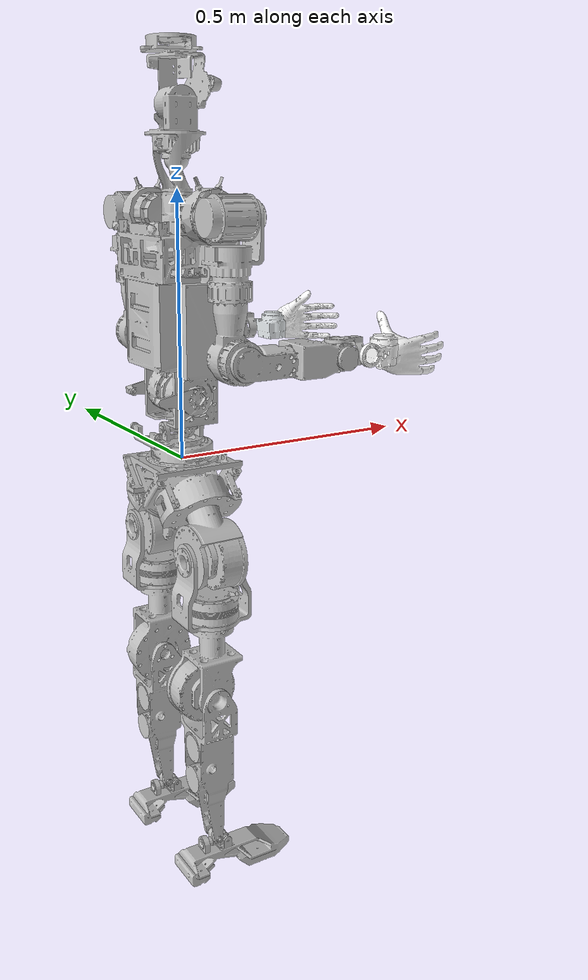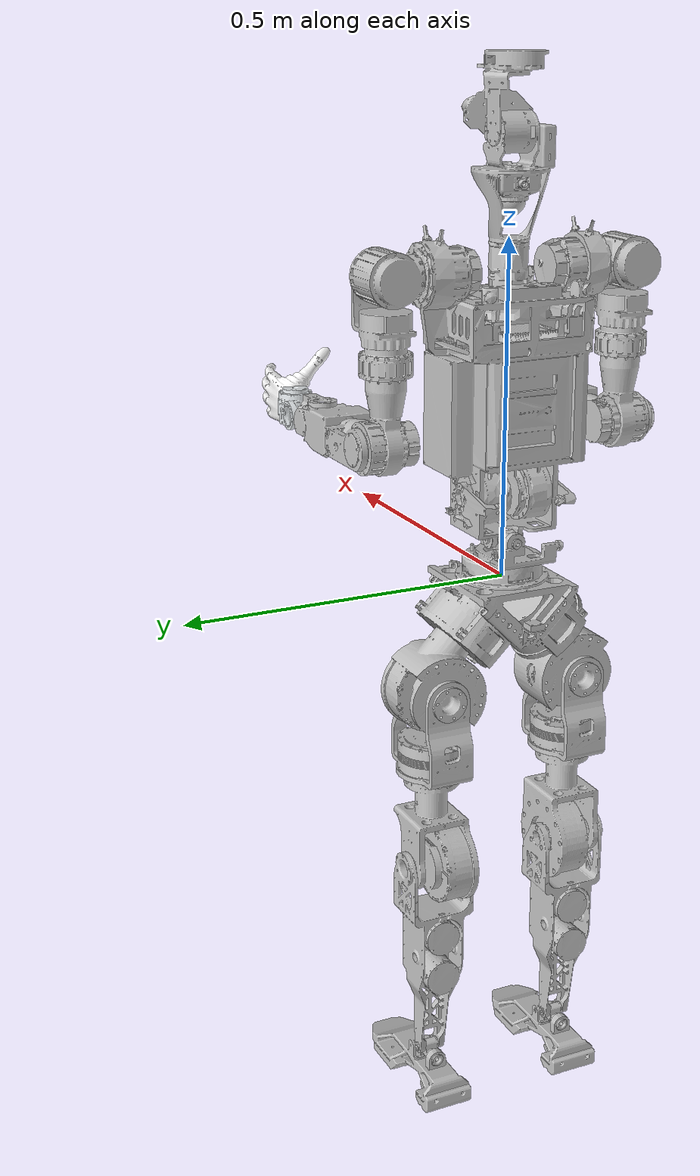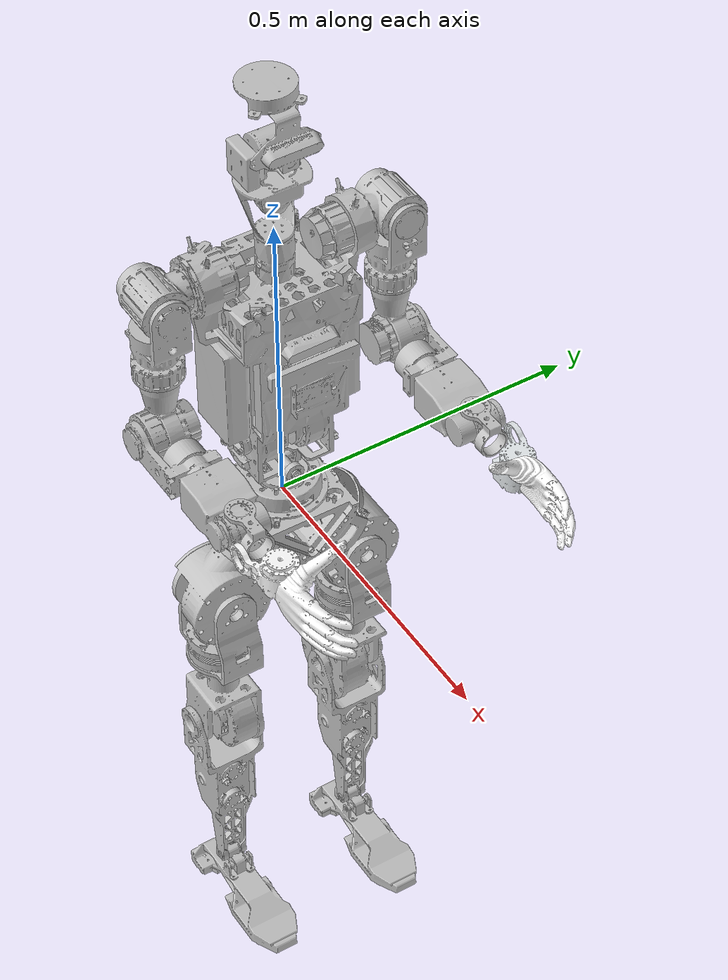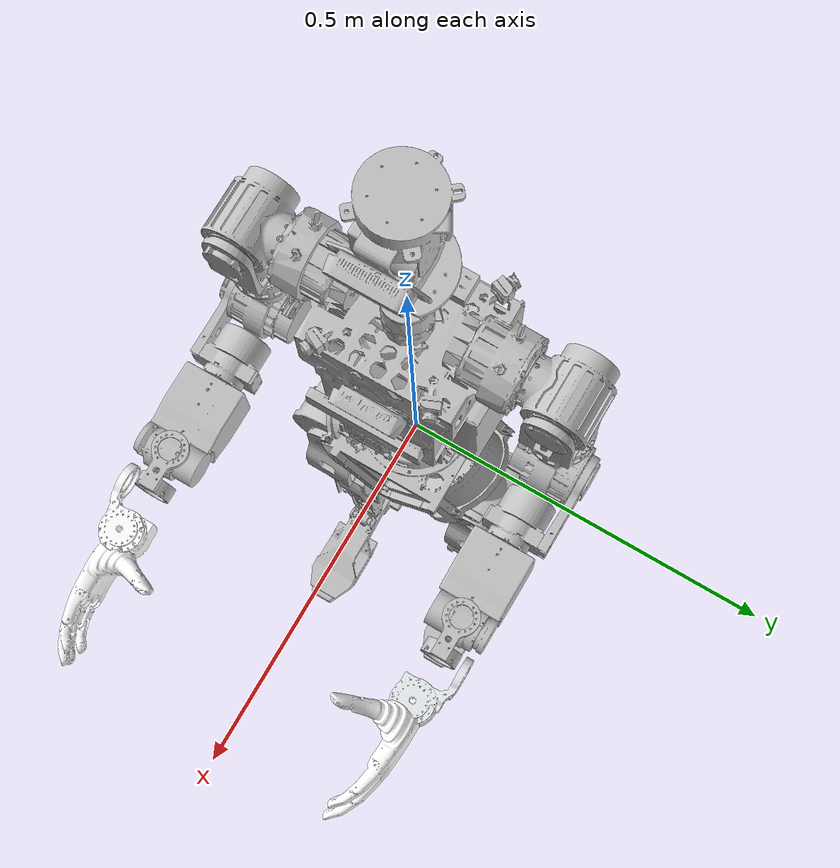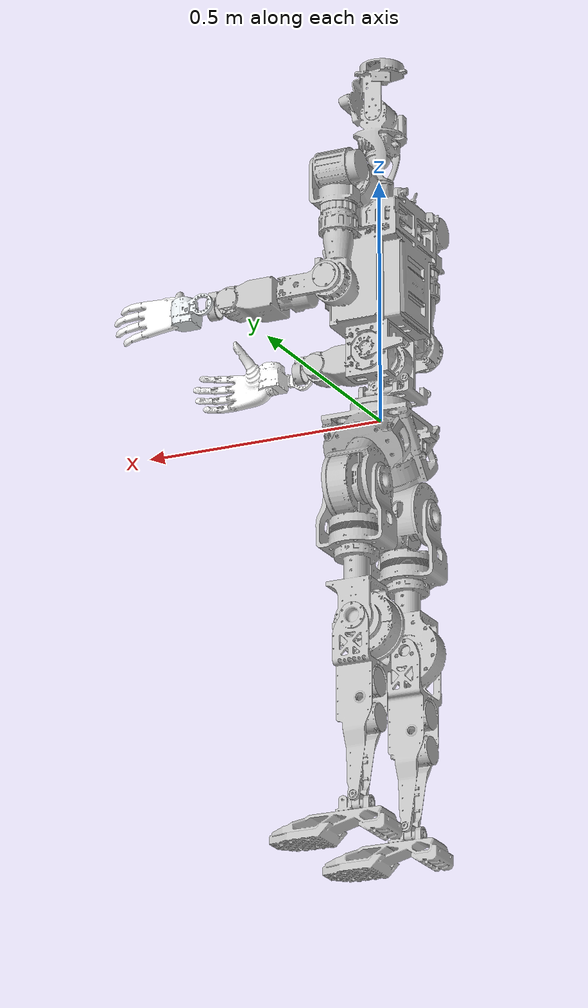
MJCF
<?xml version='1.0' encoding='UTF-8'?>
<mujoco model="v11_v4">
  <compiler angle="radian" meshdir="../meshes/" autolimits="true" discardvisual="false" />
  <default>
    <joint damping="0.5" armature="0.01" frictionloss="0.1" />
    <geom group="3" contype="1" conaffinity="1" />
  </default>
  <asset>
    <material name="silver" rgba="0.75294 0.75294 0.75294 1" />
    <material name="white" rgba="1 1 1 1" />
    <mesh name="base_link" file="/home/user2/Instinct-mjlab/InstinctMJ/src/instinct_mj/assets/resources/v11/urdf/../meshes/base_link.STL"/>
    <mesh name="left_hip_pitch_link" file="/home/user2/Instinct-mjlab/InstinctMJ/src/instinct_mj/assets/resources/v11/urdf/../meshes/left_hip_pitch_link.STL"/>
    <mesh name="left_hip_roll_link" file="/home/user2/Instinct-mjlab/InstinctMJ/src/instinct_mj/assets/resources/v11/urdf/../meshes/left_hip_roll_link.STL"/>
    <mesh name="left_hip_yaw_link" file="/home/user2/Instinct-mjlab/InstinctMJ/src/instinct_mj/assets/resources/v11/urdf/../meshes/left_hip_yaw_link.STL"/>
    <mesh name="left_knee_link" file="/home/user2/Instinct-mjlab/InstinctMJ/src/instinct_mj/assets/resources/v11/urdf/../meshes/left_knee_link.STL"/>
    <mesh name="left_ankle_pitch_link" file="/home/user2/Instinct-mjlab/InstinctMJ/src/instinct_mj/assets/resources/v11/urdf/../meshes/left_ankle_pitch_link.STL"/>
    <mesh name="left_ankle_roll_link" file="/home/user2/Instinct-mjlab/InstinctMJ/src/instinct_mj/assets/resources/v11/urdf/../meshes/left_ankle_roll_link.STL"/>
    <mesh name="right_hip_pitch_link" file="/home/user2/Instinct-mjlab/InstinctMJ/src/instinct_mj/assets/resources/v11/urdf/../meshes/right_hip_pitch_link.STL"/>
    <mesh name="right_hip_roll_link" file="/home/user2/Instinct-mjlab/InstinctMJ/src/instinct_mj/assets/resources/v11/urdf/../meshes/right_hip_roll_link.STL"/>
    <mesh name="right_hip_yaw_link" file="/home/user2/Instinct-mjlab/InstinctMJ/src/instinct_mj/assets/resources/v11/urdf/../meshes/right_hip_yaw_link.STL"/>
    <mesh name="right_knee_link" file="/home/user2/Instinct-mjlab/InstinctMJ/src/instinct_mj/assets/resources/v11/urdf/../meshes/right_knee_link.STL"/>
    <mesh name="right_ankle_pitch_link" file="/home/user2/Instinct-mjlab/InstinctMJ/src/instinct_mj/assets/resources/v11/urdf/../meshes/right_ankle_pitch_link.STL"/>
    <mesh name="right_ankle_roll_link" file="/home/user2/Instinct-mjlab/InstinctMJ/src/instinct_mj/assets/resources/v11/urdf/../meshes/right_ankle_roll_link.STL"/>
    <mesh name="waist_yaw_link" file="/home/user2/Instinct-mjlab/InstinctMJ/src/instinct_mj/assets/resources/v11/urdf/../meshes/waist_yaw_link.STL"/>
    <mesh name="waist_roll_link" file="/home/user2/Instinct-mjlab/InstinctMJ/src/instinct_mj/assets/resources/v11/urdf/../meshes/waist_roll_link.STL"/>
    <mesh name="waist_pitch_link" file="/home/user2/Instinct-mjlab/InstinctMJ/src/instinct_mj/assets/resources/v11/urdf/../meshes/waist_pitch_link.STL"/>
    <mesh name="head_yaw_link" file="/home/user2/Instinct-mjlab/InstinctMJ/src/instinct_mj/assets/resources/v11/urdf/../meshes/head_yaw_link.STL"/>
    <mesh name="head_pitch_link" file="/home/user2/Instinct-mjlab/InstinctMJ/src/instinct_mj/assets/resources/v11/urdf/../meshes/head_pitch_link.STL"/>
    <mesh name="left_shoulder_pitch_link" file="/home/user2/Instinct-mjlab/InstinctMJ/src/instinct_mj/assets/resources/v11/urdf/../meshes/left_shoulder_pitch_link.STL"/>
    <mesh name="left_shoulder_roll_link" file="/home/user2/Instinct-mjlab/InstinctMJ/src/instinct_mj/assets/resources/v11/urdf/../meshes/left_shoulder_roll_link.STL"/>
    <mesh name="left_shoulder_yaw_link" file="/home/user2/Instinct-mjlab/InstinctMJ/src/instinct_mj/assets/resources/v11/urdf/../meshes/left_shoulder_yaw_link.STL"/>
    <mesh name="left_elbow_link" file="/home/user2/Instinct-mjlab/InstinctMJ/src/instinct_mj/assets/resources/v11/urdf/../meshes/left_elbow_link.STL"/>
    <mesh name="left_wrist_roll_link" file="/home/user2/Instinct-mjlab/InstinctMJ/src/instinct_mj/assets/resources/v11/urdf/../meshes/left_wrist_roll_link.STL"/>
    <mesh name="left_wrist_yaw_link" file="/home/user2/Instinct-mjlab/InstinctMJ/src/instinct_mj/assets/resources/v11/urdf/../meshes/left_wrist_yaw_link.STL"/>
    <mesh name="left_wrist_pitch_link" file="/home/user2/Instinct-mjlab/InstinctMJ/src/instinct_mj/assets/resources/v11/urdf/../meshes/left_wrist_pitch_link.STL"/>
    <mesh name="left_hand_link" file="/home/user2/Instinct-mjlab/InstinctMJ/src/instinct_mj/assets/resources/v11/urdf/../meshes/left_hand_link.STL"/>
    <mesh name="right_shoulder_pitch_link" file="/home/user2/Instinct-mjlab/InstinctMJ/src/instinct_mj/assets/resources/v11/urdf/../meshes/right_shoulder_pitch_link.STL"/>
    <mesh name="right_shoulder_roll_link" file="/home/user2/Instinct-mjlab/InstinctMJ/src/instinct_mj/assets/resources/v11/urdf/../meshes/right_shoulder_roll_link.STL"/>
    <mesh name="right_shoulder_yaw_link" file="/home/user2/Instinct-mjlab/InstinctMJ/src/instinct_mj/assets/resources/v11/urdf/../meshes/right_shoulder_yaw_link.STL"/>
    <mesh name="right_elbow_link" file="/home/user2/Instinct-mjlab/InstinctMJ/src/instinct_mj/assets/resources/v11/urdf/../meshes/right_elbow_link.STL"/>
    <mesh name="right_wrist_roll_link" file="/home/user2/Instinct-mjlab/InstinctMJ/src/instinct_mj/assets/resources/v11/urdf/../meshes/right_wrist_roll_link.STL"/>
    <mesh name="right_wrist_yaw_link" file="/home/user2/Instinct-mjlab/InstinctMJ/src/instinct_mj/assets/resources/v11/urdf/../meshes/right_wrist_yaw_link.STL"/>
    <mesh name="right_wrist_pitch_link" file="/home/user2/Instinct-mjlab/InstinctMJ/src/instinct_mj/assets/resources/v11/urdf/../meshes/right_wrist_pitch_link.STL"/>
    <mesh name="right_hand_link" file="/home/user2/Instinct-mjlab/InstinctMJ/src/instinct_mj/assets/resources/v11/urdf/../meshes/right_hand_link.STL"/>
  </asset>
  <worldbody>
    <body name="base_link">
      <inertial pos="-0.000155 2.8e-05 -0.049334" quat="0.505449 0.504747 -0.495115 0.494584" mass="5.77559" diaginertia="0.0309649 0.0287201 0.019774"/>
      <joint name="floating_base_joint" type="free" limited="false" actuatorfrclimited="false"/>
      <geom type="mesh" contype="0" conaffinity="0" group="2" density="0" rgba="0.75294 0.75294 0.75294 1" mesh="base_link"/>
      <geom size="0.07" pos="0 0 -0.05" rgba="0.75294 0.75294 0.75294 1"/>
      <site name="imu" size="0.01" pos="0.0 0 0.0"/>
      <body name="left_hip_pitch_link" pos="0 0.11619 -0.12455" quat="0.923879 -0.382684 0 0">
        <inertial pos="0.003585 0.02108 -0.028245" quat="0.707999 0.009721 0.0123654 0.706039" mass="2.31832" diaginertia="0.0280807 0.0280807 0.0280807"/>
        <joint name="left_hip_pitch_joint" pos="0 0 0" axis="0 1 0" range="-2.618 2.618" actuatorfrcrange="-150 150"/>
        <geom type="mesh" contype="0" conaffinity="0" group="2" density="0" rgba="0.75294 0.75294 0.75294 1" mesh="left_hip_pitch_link"/>
        <body name="left_hip_roll_link" pos="-0.001 0.03 -0.03" quat="0.923879 0.382684 0 0">
          <inertial pos="0.001722 1.6e-05 -0.084185" quat="0.999999 0 -0.00155171 0" mass="1.4811" diaginertia="0.026999 0.026999 0.026999"/>
          <joint name="left_hip_roll_joint" pos="0 0 0" axis="1 0 0" range="-0.7854 2.3563" actuatorfrcrange="-150 150"/>
          <geom type="mesh" contype="0" conaffinity="0" group="2" density="0" rgba="0.752941 0.752941 0.752941 1" mesh="left_hip_roll_link"/>
          <body name="left_hip_yaw_link" pos="0 0 -0.13">
            <inertial pos="-0.010508 -0.008686 -0.118129" quat="0.0317018 0.713347 -0.0182505 0.699856" mass="2.40368" diaginertia="0.0237487 0.0237487 0.0237487"/>
            <joint name="left_hip_yaw_joint" pos="0 0 0" axis="0 0 1" range="-2.0944 2.0944" actuatorfrcrange="-90 90"/>
            <geom type="mesh" contype="0" conaffinity="0" group="2" density="0" rgba="0.752941 0.752941 0.752941 1" mesh="left_hip_yaw_link"/>
            <geom size="0.05 0.1" pos="0 0 0.05" type="capsule" rgba="0.752941 0.752941 0.752941 1"/>
            <body name="left_knee_link" pos="-0.015 0 -0.151">
              <inertial pos="0.004171 0.000668 -0.136788" quat="0.70704 0.00798493 0.00707864 0.707093" mass="1.79438" diaginertia="0.0307603 0.0307603 0.0307603"/>
              <joint name="left_knee_joint" pos="0 0 0" axis="0 1 0" range="-0.0873 2.0944" actuatorfrcrange="-150 150"/>
              <geom type="mesh" contype="0" conaffinity="0" group="2" density="0" rgba="0.752941 0.752941 0.752941 1" mesh="left_knee_link"/>
              <geom size="0.04 0.15" pos="0 0 -0.15" type="capsule" rgba="0.752941 0.752941 0.752941 1"/>
              <body name="left_ankle_pitch_link" pos="0.015 0.0005 -0.339">
                <inertial pos="-0.004439 8e-06 -0.007488" quat="0 0.83147 0 0.55557" mass="0.089167" diaginertia="2.22426e-05 1.9e-05 1.37574e-05"/>
                <joint name="left_ankle_pitch_joint" pos="0 0 0" axis="0 1 0" range="-0.9599 0.2618" actuatorfrcrange="-54 54"/>
                <geom type="mesh" contype="0" conaffinity="0" group="2" density="0" rgba="0.752941 0.752941 0.752941 1" mesh="left_ankle_pitch_link"/>
                <body name="left_ankle_roll_link" pos="0 0 -0.015">
                  <inertial pos="0.044476 0 -0.035687" quat="0 0.6789 0 0.73423" mass="0.878239" diaginertia="0.00453339 0.00445 0.000543609"/>
                  <joint name="left_ankle_roll_joint" pos="0 0 0" axis="1 0 0" range="-0.1745 0.1745" actuatorfrcrange="-54 54"/>
                  <geom type="mesh" contype="0" conaffinity="0" group="2" density="0" rgba="0.752941 0.752941 0.752941 1" mesh="left_ankle_roll_link"/>
                  <geom size="0.012 0.08" pos="0.04 -0.03 -0.055" quat="0.710914 0 0.703279 0" type="capsule" rgba="0.2 0.2 0.2 1"/>
                  <geom size="0.012 0.1" pos="0.05 -0.02 -0.055" quat="0.710914 0 0.703279 0" type="capsule" rgba="0.2 0.2 0.2 1"/>
                  <geom size="0.012 0.11" pos="0.054 -0.01 -0.055" quat="0.710914 0 0.703279 0" type="capsule" rgba="0.2 0.2 0.2 1"/>
                  <geom size="0.012 0.11" pos="0.054 0 -0.055" quat="0.710914 0 0.703279 0" type="capsule" rgba="0.2 0.2 0.2 1"/>
                  <geom size="0.012 0.11" pos="0.054 0.01 -0.055" quat="0.710914 0 0.703279 0" type="capsule" rgba="0.2 0.2 0.2 1"/>
                  <geom size="0.012 0.1" pos="0.05 0.02 -0.055" quat="0.710914 0 0.703279 0" type="capsule" rgba="0.2 0.2 0.2 1"/>
                  <geom size="0.012 0.08" pos="0.04 0.03 -0.055" quat="0.710914 0 0.703279 0" type="capsule" rgba="0.2 0.2 0.2 1"/>
                </body>
              </body>
            </body>
          </body>
        </body>
      </body>
      <body name="right_hip_pitch_link" pos="0 -0.11619 -0.12455" quat="0.923879 0.382684 0 0">
        <inertial pos="0.003585 -0.02108 -0.028245" quat="0.706014 0.0165728 0.013907 0.707868" mass="2.31832" diaginertia="0.0280807 0.0280807 0.0280807"/>
        <joint name="right_hip_pitch_joint" pos="0 0 0" axis="0 1 0" range="-2.618 2.618" actuatorfrcrange="-150 150"/>
        <geom type="mesh" contype="0" conaffinity="0" group="2" density="0" rgba="0.752941 0.752941 0.752941 1" mesh="right_hip_pitch_link"/>
        <body name="right_hip_roll_link" pos="-0.001 -0.03 -0.03" quat="0.923879 -0.382684 0 0">
          <inertial pos="0.001722 -1.6e-05 -0.084185" quat="0.999999 0.000357321 -0.00155168 8.80701e-05" mass="1.4811" diaginertia="0.026999 0.026999 0.026999"/>
          <joint name="right_hip_roll_joint" pos="0 0 0" axis="1 0 0" range="-2.3563 0.7854" actuatorfrcrange="-150 150"/>
          <geom type="mesh" contype="0" conaffinity="0" group="2" density="0" rgba="0.752941 0.752941 0.752941 1" mesh="right_hip_roll_link"/>
          <body name="right_hip_yaw_link" pos="0 0 -0.13">
            <inertial pos="-0.010508 0.008686 -0.118129" quat="-0.032124 0.713319 0.018665 0.699854" mass="2.40368" diaginertia="0.0237487 0.0237487 0.0237487"/>
            <joint name="right_hip_yaw_joint" pos="0 0 0" axis="0 0 1" range="-2.0944 2.0944" actuatorfrcrange="-150 150"/>
            <geom type="mesh" contype="0" conaffinity="0" group="2" density="0" rgba="0.752941 0.752941 0.752941 1" mesh="right_hip_yaw_link"/>
            <geom size="0.05 0.1" pos="0 0 0.05" type="capsule" rgba="0.752941 0.752941 0.752941 1"/>
            <body name="right_knee_link" pos="-0.015 0 -0.151">
              <inertial pos="0.004171 -0.000668 -0.136788" quat="0.707093 0.0070741 0.00798947 0.70704" mass="1.79438" diaginertia="0.0307603 0.0307603 0.0307603"/>
              <joint name="right_knee_joint" pos="0 0 0" axis="0 1 0" range="-0.0873 2.0944" actuatorfrcrange="-150 150"/>
              <geom type="mesh" contype="0" conaffinity="0" group="2" density="0" rgba="0.752941 0.752941 0.752941 1" mesh="right_knee_link"/>
              <geom size="0.04 0.15" pos="0 0 -0.15" type="capsule" rgba="0.752941 0.752941 0.752941 1"/>
              <body name="right_ankle_pitch_link" pos="0.015 -0.0005 -0.339">
                <inertial pos="-0.004439 -8e-06 -0.007488" quat="0 0.83147 0 0.55557" mass="0.089167" diaginertia="2.22426e-05 1.9e-05 1.37574e-05"/>
                <joint name="right_ankle_pitch_joint" pos="0 0 0" axis="0 1 0" range="-0.9599 0.2618" actuatorfrcrange="-54 54"/>
                <geom type="mesh" contype="0" conaffinity="0" group="2" density="0" rgba="0.752941 0.752941 0.752941 1" mesh="right_ankle_pitch_link"/>
                <body name="right_ankle_roll_link" pos="0 0 -0.015">
                  <inertial pos="0.044476 0 -0.035687" quat="0 0.679628 0 0.733557" mass="0.878239" diaginertia="0.00453216 0.00445 0.00054484"/>
                  <joint name="right_ankle_roll_joint" pos="0 0 0" axis="1 0 0" range="-0.1745 0.1745" actuatorfrcrange="-54 54"/>
                  <geom type="mesh" contype="0" conaffinity="0" group="2" density="0" rgba="0.752941 0.752941 0.752941 1" mesh="right_ankle_roll_link"/>
                  <geom size="0.012 0.08" pos="0.04 -0.03 -0.055" quat="0.710914 0 0.703279 0" type="capsule" rgba="0.2 0.2 0.2 1"/>
                  <geom size="0.012 0.1" pos="0.05 -0.02 -0.055" quat="0.710914 0 0.703279 0" type="capsule" rgba="0.2 0.2 0.2 1"/>
                  <geom size="0.012 0.11" pos="0.054 -0.01 -0.055" quat="0.710914 0 0.703279 0" type="capsule" rgba="0.2 0.2 0.2 1"/>
                  <geom size="0.012 0.11" pos="0.054 0 -0.055" quat="0.710914 0 0.703279 0" type="capsule" rgba="0.2 0.2 0.2 1"/>
                  <geom size="0.012 0.11" pos="0.054 0.01 -0.055" quat="0.710914 0 0.703279 0" type="capsule" rgba="0.2 0.2 0.2 1"/>
                  <geom size="0.012 0.1" pos="0.05 0.02 -0.055" quat="0.710914 0 0.703279 0" type="capsule" rgba="0.2 0.2 0.2 1"/>
                  <geom size="0.012 0.08" pos="0.04 0.03 -0.055" quat="0.710914 0 0.703279 0" type="capsule" rgba="0.2 0.2 0.2 1"/>
                </body>
              </body>
            </body>
          </body>
        </body>
      </body>
      <body name="waist_yaw_link">
        <inertial pos="-0.023393 1e-06 0.041219" quat="0 0.677318 0 0.73569" mass="0.2361" diaginertia="0.000486235 0.000381 0.000157765"/>
        <joint name="waist_yaw_joint" pos="0 0 0" axis="0 0 1" range="-1.5708 1.5708" actuatorfrcrange="-90 90"/>
        <geom type="mesh" contype="0" conaffinity="0" group="2" density="0" rgba="0.752941 0.752941 0.752941 1" mesh="waist_yaw_link"/>
        <body name="waist_roll_link" pos="0 0 0.0615">
          <inertial pos="0 0 -1.7e-05" quat="0 0.707107 0 0.707107" mass="0.044979" diaginertia="1.8e-05 1.3e-05 6e-06"/>
          <joint name="waist_roll_joint" pos="0 0 0" axis="1 0 0" range="-0.1745 0.1745" actuatorfrcrange="-90 90"/>
          <geom type="mesh" contype="0" conaffinity="0" group="2" density="0" rgba="0.752941 0.752941 0.752941 1" mesh="waist_roll_link"/>
          <body name="waist_pitch_link">
            <inertial pos="-0.006743 0.000129 0.239122" quat="0.99984 -0.00138923 -0.0177964 -0.000710682" mass="13.9753" diaginertia="0.216592 0.185444 0.0781879"/>
            <joint name="waist_pitch_joint" pos="0 0 0" axis="0 1 0" range="-0.3491 0.6981" actuatorfrcrange="-90 90"/>
            <geom type="mesh" contype="0" conaffinity="0" group="2" density="0" rgba="0.752941 0.752941 0.752941 1" mesh="waist_pitch_link"/>
            <geom size="0.08 0.04" pos="0 0 0.3" quat="0.707107 0.707107 0 0" type="capsule" rgba="0.752941 0.752941 0.752941 1"/>
            <geom size="0.075 0.035" pos="0 0 0.2" quat="0.707107 0.707107 0 0" type="capsule" rgba="0.752941 0.752941 0.752941 1"/>
            <geom size="0.07 0.025" pos="0 0 0.1" quat="0.707107 0.707107 0 0" type="capsule" rgba="0.752941 0.752941 0.752941 1"/>
            <body name="head_yaw_link" pos="0 0 0.4375">
              <inertial pos="-0.001469 -0.001706 0.101301" quat="0.998467 -0.00882478 -0.00428167 0.0544812" mass="0.879937" diaginertia="0.00201828 0.00183516 0.00071856"/>
              <geom type="mesh" contype="0" conaffinity="0" group="2" density="0" rgba="0.752941 0.752941 0.752941 1" mesh="head_yaw_link"/>
              <geom size="0.07 0.005" pos="0 0 0.1" quat="0.707107 0.707107 0 0" type="capsule" rgba="0.752941 0.752941 0.752941 1"/>
              <body name="head_pitch_link" pos="0 0 0.142">
                <inertial pos="0.024719 0.005163 0.054194" quat="0.275074 0.367039 0.169088 0.872368" mass="0.311827" diaginertia="0.000742282 0.000655865 0.000263853"/>
                <geom type="mesh" contype="0" conaffinity="0" group="2" density="0" rgba="0.752941 0.752941 0.752941 1" mesh="head_pitch_link"/>
              </body>
            </body>
            <body name="left_shoulder_pitch_link" pos="0 0.1446 0.3935">
              <inertial pos="0.005441 0.044691 -9e-06" quat="0.435162 0.557345 -0.435162 0.557345" mass="0.82606" diaginertia="0.000626 0.0006 0.000583"/>
              <joint name="left_shoulder_pitch_joint" pos="0 0 0" axis="0 1 0" range="-2.618 2.618" actuatorfrcrange="-80 80"/>
              <geom type="mesh" contype="0" conaffinity="0" group="2" density="0" rgba="0.752941 0.752941 0.752941 1" mesh="left_shoulder_pitch_link"/>
              <body name="left_shoulder_roll_link" pos="0 0.047 0">
                <inertial pos="0.004638 5.8e-05 -0.095341" quat="0.635553 -0.168427 -0.145122 0.739354" mass="0.919601" diaginertia="0.00159214 0.00158606 0.000733801"/>
                <joint name="left_shoulder_roll_joint" pos="0 0 0" axis="1 0 0" range="-0.0873 3.2289" actuatorfrcrange="-80 80"/>
                <geom type="mesh" contype="0" conaffinity="0" group="2" density="0" rgba="0.752941 0.752941 0.752941 1" mesh="left_shoulder_roll_link"/>
                <body name="left_shoulder_yaw_link" pos="-0.00072034 0 -0.1346">
                  <inertial pos="0.006217 0.007462 -0.090852" quat="0.819073 -0.0155607 0.0734932 0.56875" mass="1.02565" diaginertia="0.00155801 0.00150183 0.000799156"/>
                  <joint name="left_shoulder_yaw_joint" pos="0 0 0" axis="0 0 1" range="-2.618 2.618" actuatorfrcrange="-80 80"/>
                  <geom type="mesh" contype="0" conaffinity="0" group="2" density="0" rgba="0.752941 0.752941 0.752941 1" mesh="left_shoulder_yaw_link"/>
                  <geom size="0.035 0.04" pos="0 0 0" type="capsule" rgba="0.752941 0.752941 0.752941 1"/>                  <body name="left_elbow_link" pos="0.0075 0 -0.1019">
                    <inertial pos="0.08001 0.011386 -0.008325" quat="-0.0715389 0.633022 0.285541 0.715983" mass="0.57411" diaginertia="0.000881445 0.000795651 0.000284904"/>
                    <joint name="left_elbow_joint" pos="0 0 0" axis="0 1 0" range="-0.6981 3.3161" actuatorfrcrange="-80 80"/>
                    <geom type="mesh" contype="0" conaffinity="0" group="2" density="0" rgba="0.752941 0.752941 0.752941 1" mesh="left_elbow_link"/>
                    <geom size="0.045 0.05" pos="0.05 0 0" quat="0.714421 0 0.699716 0" type="capsule" rgba="0.752941 0.752941 0.752941 1"/>
                    <body name="left_wrist_roll_link" pos="0.1 0.0019 -0.009">
                      <inertial pos="0.084999 -4.2e-05 -0.005022" quat="0.534353 0.462261 0.462063 0.535986" mass="0.699715" diaginertia="0.001204 0.00112857 0.000441426"/>
                      <joint name="left_wrist_roll_joint" pos="0 0 0" axis="1 0 0" range="-2.618 2.618" actuatorfrcrange="-11.5 11.5"/>
                      <geom type="mesh" contype="0" conaffinity="0" group="2" density="0" rgba="0.752941 0.752941 0.752941 1" mesh="left_wrist_roll_link"/>
                      <body name="left_wrist_yaw_link" pos="0.1135 0 0">
                        <inertial pos="0.051009 0.006165 -0.002321" quat="0.211869 0.806792 0.349015 0.427068" mass="0.404102" diaginertia="0.000221574 0.000202653 0.000134773"/>
                        <joint name="left_wrist_yaw_joint" pos="0 0 0" axis="0 0 1" range="-1.6581 1.5708" actuatorfrcrange="-11.5 11.5"/>
                        <geom type="mesh" contype="0" conaffinity="0" group="2" density="0" rgba="0.752941 0.752941 0.752941 1" mesh="left_wrist_yaw_link"/>
                        <geom size="0.06 0.04" pos="0.075 0 0" quat="0.707107 0 -0.707107 0" type="capsule" rgba="0.752941 0.752941 0.752941 1"/>
                        <body name="left_wrist_pitch_link" pos="0.054 0 0">
                          <inertial pos="0.03112 0.014397 0.000457" quat="0.706925 0.706925 -0.0160252 -0.0160252" mass="0.05282" diaginertia="0.000106 0.000106 0.000106"/>
                          <joint name="left_wrist_pitch_joint" pos="0 0 0" axis="0 1 0" range="-1.6581 1.4835" actuatorfrcrange="-11.5 11.5"/>
                          <geom type="mesh" contype="0" conaffinity="0" group="2" density="0" rgba="0.898039 0.917647 0.929412 1" mesh="left_wrist_pitch_link"/>
                          <body name="left_hand_link" pos="0.052 0 0.001">
                            <inertial pos="0.068357 -0.00813 0.010003" quat="0.686409 0.317601 0.557668 0.342022" mass="0.5" diaginertia="0.00154314 0.00114069 0.000539169"/>
                            <geom type="mesh" contype="0" conaffinity="0" group="2" density="0" rgba="1 1 1 1" mesh="left_hand_link"/>
                          </body>
                        </body>
                      </body>
                    </body>
                  </body>
                </body>
              </body>
            </body>
            <body name="right_shoulder_pitch_link" pos="0 -0.1446 0.3935">
              <inertial pos="0.00524 -0.044604 0" quat="0.540044 0.456457 -0.540044 0.456457" mass="0.823511" diaginertia="0.000621 0.000600676 0.000576324"/>
              <joint name="right_shoulder_pitch_joint" pos="0 0 0" axis="0 1 0" range="-2.618 2.618" actuatorfrcrange="-80 80"/>
              <geom type="mesh" contype="0" conaffinity="0" group="2" density="0" rgba="0.752941 0.752941 0.752941 1" mesh="right_shoulder_pitch_link"/>
              <body name="right_shoulder_roll_link" pos="0 -0.047 0">
                <inertial pos="0.004823 -6.6e-05 -0.094934" quat="0.689588 -0.156423 -0.156423 0.689588" mass="0.922881" diaginertia="0.00164 0.00163588 0.000734123"/>
                <joint name="right_shoulder_roll_joint" pos="0 0 0" axis="1 0 0" range="-3.2289 0.0873" actuatorfrcrange="-80 80"/>
                <geom type="mesh" contype="0" conaffinity="0" group="2" density="0" rgba="0.752941 0.752941 0.752941 1" mesh="right_shoulder_roll_link"/>
                <body name="right_shoulder_yaw_link" pos="-0.00072034 0 -0.1346">
                  <inertial pos="0.006215 -0.007444 -0.090877" quat="0.574371 0.0733484 -0.0145216 0.815173" mass="1.0263" diaginertia="0.00155813 0.00150352 0.000800349"/>
                  <joint name="right_shoulder_yaw_joint" pos="0 0 0" axis="0 0 1" range="-2.618 2.618" actuatorfrcrange="-80 80"/>
                  <geom type="mesh" contype="0" conaffinity="0" group="2" density="0" rgba="0.752941 0.752941 0.752941 1" mesh="right_shoulder_yaw_link"/>
                  <geom size="0.035 0.04" pos="0 0 0" type="capsule" rgba="0.752941 0.752941 0.752941 1"/>
                  <body name="right_elbow_link" pos="0.0075 0 -0.1019">
                    <inertial pos="0.07929 -0.011745 -0.008251" quat="0.0594802 0.629275 -0.29337 0.717223" mass="0.579271" diaginertia="0.000926527 0.000837115 0.000286359"/>
                    <joint name="right_elbow_joint" pos="0 0 0" axis="0 1 0" range="-0.6981 3.3161" actuatorfrcrange="-80 80"/>
                    <geom type="mesh" contype="0" conaffinity="0" group="2" density="0" rgba="0.752941 0.752941 0.752941 1" mesh="right_elbow_link"/>
                    <geom size="0.045 0.05" pos="0.05 0 0" quat="0.714421 0 0.699716 0" type="capsule" rgba="0.752941 0.752941 0.752941 1"/>
                    <body name="right_wrist_roll_link" pos="0.1 -0.0019 -0.009">
                      <inertial pos="0.085003 4.9e-05 -0.00502" quat="0.536357 0.461633 0.461831 0.534722" mass="0.700041" diaginertia="0.001205 0.00112888 0.000442115"/>
                      <joint name="right_wrist_roll_joint" pos="0 0 0" axis="1 0 0" range="-2.618 2.618" actuatorfrcrange="-11.5 11.5"/>
                      <geom type="mesh" contype="0" conaffinity="0" group="2" density="0" rgba="0.752941 0.752941 0.752941 1" mesh="right_wrist_roll_link"/>
                      <body name="right_wrist_yaw_link" pos="0.1135 0 0">
                        <inertial pos="0.051094 -0.006168 -0.002269" quat="0.421711 0.367386 0.800912 0.213842" mass="0.404099" diaginertia="0.000219454 0.000201397 0.000135149"/>
                        <joint name="right_wrist_yaw_joint" pos="0 0 0" axis="0 0 1" range="-1.5708 1.6581" actuatorfrcrange="-11.5 11.5"/>
                        <geom type="mesh" contype="0" conaffinity="0" group="2" density="0" rgba="0.752941 0.752941 0.752941 1" mesh="right_wrist_yaw_link"/>
                        <geom size="0.06 0.04" pos="0.075 0 0" quat="0.707107 0 -0.707107 0" type="capsule" rgba="0.752941 0.752941 0.752941 1"/>
                        <body name="right_wrist_pitch_link" pos="0.054 0 0">
                          <inertial pos="0.03112 -0.014397 0.000457" quat="0.230106 0.668619 -0.230106 0.668619" mass="0.05282" diaginertia="3.8e-05 3.78078e-05 1.71922e-05"/>
                          <joint name="right_wrist_pitch_joint" pos="0 0 0" axis="0 1 0" range="-1.6581 1.4835" actuatorfrcrange="-11.5 11.5"/>
                          <geom type="mesh" contype="0" conaffinity="0" group="2" density="0" rgba="1 1 1 1" mesh="right_wrist_pitch_link"/>
                          <body name="right_hand_link" pos="0.054287 0 -0.01594">
                            <inertial pos="0.066084 0.008134 0.026947" quat="0.342022 0.557668 0.317601 0.686409" mass="0.5" diaginertia="0.00154314 0.00114069 0.000539169"/>
                            <geom type="mesh" contype="0" conaffinity="0" group="2" density="0" rgba="1 1 1 1" mesh="right_hand_link"/>
                          </body>
                        </body>
                      </body>
                    </body>
                  </body>
                </body>
              </body>
            </body>
          </body>
        </body>
      </body>
      <body name="imu_link" pos="-0.09835 0 -0.052"/>
    </body>
  </worldbody>
  <contact>
    <exclude body1="left_elbow_link" body2="left_wrist_pitch_link"/>
    <exclude body1="right_elbow_link" body2="right_wrist_pitch_link"/>
    <exclude body1="base_link" body2="left_hip_roll_link"/>
    <exclude body1="base_link" body2="right_hip_roll_link"/>
  </contact>
  <sensor>
    <framequat name="orientation" objtype="site" objname="imu"/>
    <framepos name="position" objtype="site" objname="imu"/>
    <gyro name="imu_ang_vel" site="imu"/>
    <velocimeter name="imu_lin_vel" site="imu"/>
    <accelerometer name="imu_lin_acc" site="imu"/>
    <subtreeangmom name="root_angmom" body="base_link"/>
  </sensor>
</mujoco>
